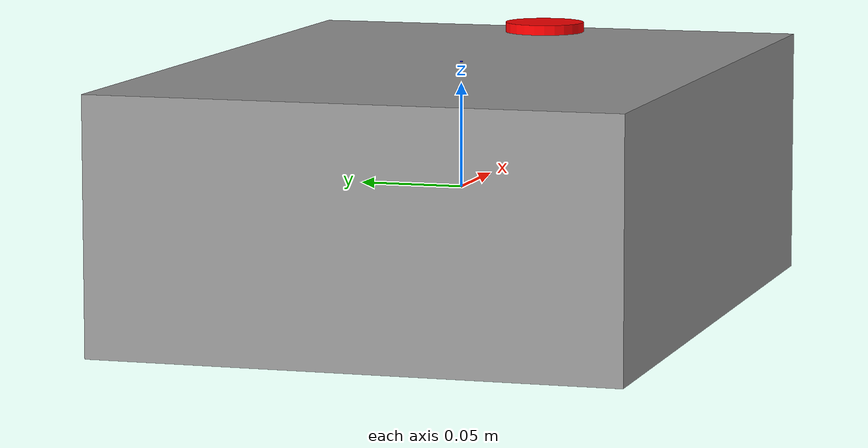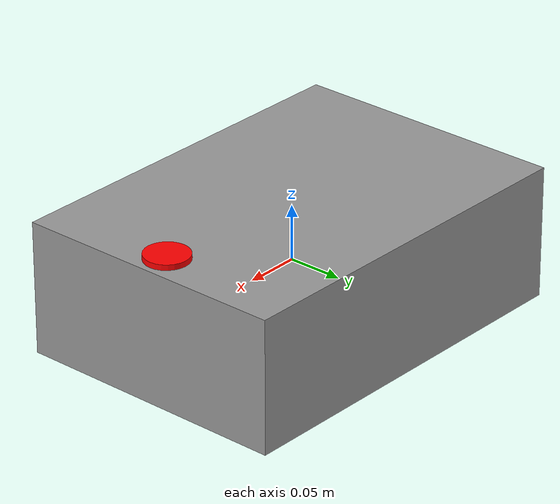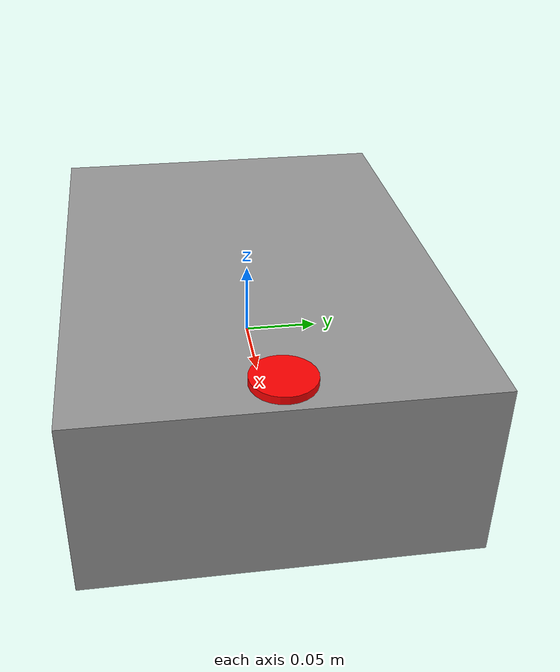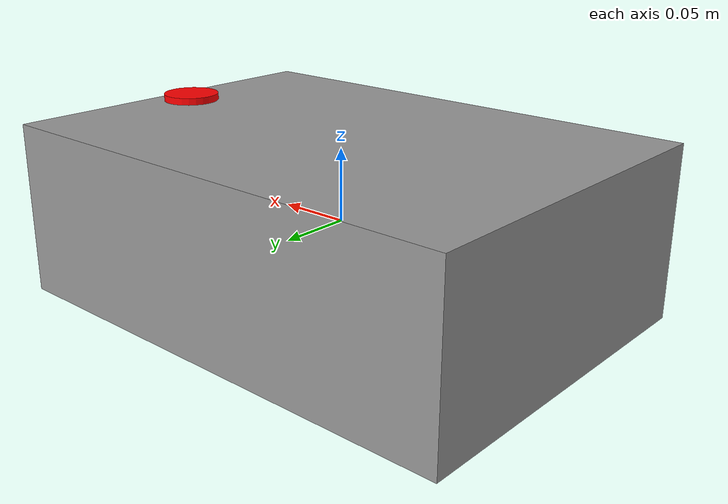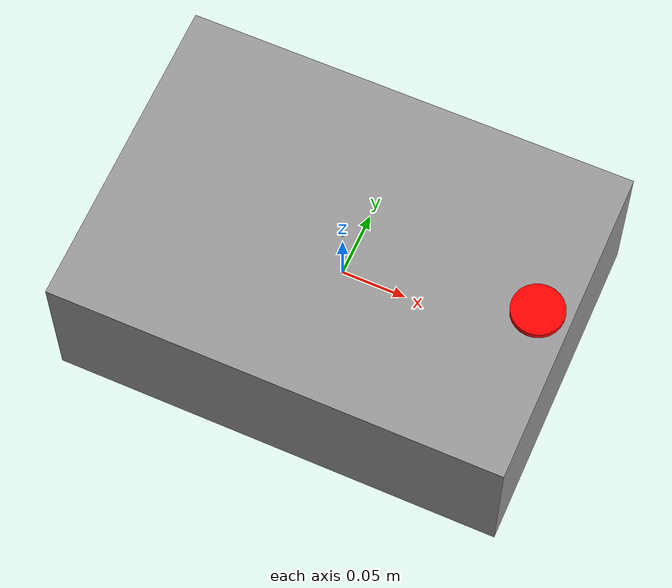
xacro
<?xml version="1.0"?>
<robot name="limo" xmlns:xacro="http://ros.org/wiki/xacro">

  <!-- Include macros -->
  <xacro:include filename="limo_macros.xacro"/>

  <!-- Properties -->
  <xacro:property name="base_length" value="0.35"/>
  <xacro:property name="base_width" value="0.25"/>
  <xacro:property name="base_height" value="0.12"/>
  <xacro:property name="base_mass" value="8.0"/>
  <xacro:property name="base_inertia_val" value="0.20"/>

  <!-- Materials -->
  <material name="base_gray">
    <color rgba="0.6 0.6 0.6 1.0"/>
  </material>

  <material name="laser_material">
    <color rgba="1.0 0.0 0.0 1.0"/>
  </material>

  <material name="imu_material">
    <color rgba="0.0 0.0 1.0 1.0"/>
  </material>

  <!-- Base Link -->
  <link name="base_link">
    <visual>
      <geometry>
        <box size="${base_length} ${base_width} ${base_height}"/>
      </geometry>
      <material name="base_gray"/>
    </visual>

    <collision>
      <geometry>
        <box size="${base_length} ${base_width} ${base_height}"/>
      </geometry>
    </collision>

    <inertial>
      <origin xyz="0 0 0" rpy="0 0 0"/>
      <mass value="${base_mass}"/>
      <inertia
        ixx="${base_inertia_val}"
        ixy="0.0"
        ixz="0.0"
        iyy="${base_inertia_val}"
        iyz="0.0"
        izz="${base_inertia_val}"/>
    </inertial>
  </link>

  <!-- LIDAR -->
  <xacro:limo_laser parent_prefix="base_link" frame_prefix="laser">
    <origin xyz="0.15 0 ${base_height/2}" rpy="0 0 0"/>
  </xacro:limo_laser>

  <!-- IMU -->
  <xacro:limo_imu parent_prefix="base_link" frame_prefix="imu">
    <origin xyz="0 0 ${base_height/2}" rpy="0 0 0"/>
  </xacro:limo_imu>

</robot>

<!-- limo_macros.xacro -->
<robot name="limo_macros" xmlns:xacro="http://ros.org/wiki/xacro">

  <!-- ================= WHEELS ================= -->
  <xacro:macro name="limo_wheel" params="parent_prefix wheel_prefix reflect *joint_pose">
    <link name="${wheel_prefix}_wheel_link">
      <inertial>
        <origin xyz="0 0 0"/>
        <mass value="0.5"/>
        <inertia ixx="0.01055" ixy="0" ixz="0"
                 iyy="0.00075" iyz="0"
                 izz="0.01055"/>
      </inertial>

      <visual>
        <origin xyz="0 0 0" rpy="0 0 0"/>
        <geometry>
          <mesh filename="package://limo_description/meshes/limo_wheel.dae"/>
        </geometry>
      </visual>

      <collision>
        <origin xyz="0 ${wheel_length/2} 0" rpy="1.57 0 0"/>
        <geometry>
          <cylinder length="${wheel_length}" radius="${wheel_radius}"/>
        </geometry>
      </collision>
    </link>

    <joint name="${wheel_prefix}_wheel" type="continuous">
      <parent link="${parent_prefix}"/>
      <child link="${wheel_prefix}_wheel_link"/>
      <xacro:insert_block name="joint_pose"/>
      <axis xyz="0 ${reflect} 0"/>
    </joint>
  </xacro:macro>

  <!-- ================= LASER ================= -->
  <xacro:macro name="limo_laser" params="parent_prefix frame_prefix *joint_pose">
    <link name="${frame_prefix}_link">
      <inertial>
        <mass value="0.1"/>
        <origin xyz="0 0 0" rpy="0 0 0"/>
        <inertia ixx="1e-6" ixy="0" ixz="0"
                 iyy="1e-6" iyz="0"
                 izz="1e-6"/>
      </inertial>

      <visual>
        <geometry>
          <cylinder radius="0.02" length="0.01"/>
        </geometry>
        <material name="laser_material"/>
      </visual>

      <collision>
        <geometry>
          <cylinder radius="0.032" length="0.016"/>
        </geometry>
      </collision>
    </link>

    <joint name="${frame_prefix}_joint" type="fixed">
      <xacro:insert_block name="joint_pose"/>
      <parent link="${parent_prefix}"/>
      <child link="${frame_prefix}_link"/>
    </joint>
  </xacro:macro>

  <!-- ================= DEPTH CAMERA ================= -->
  <xacro:macro name="limo_depth_camera" params="parent_prefix frame_prefix *joint_pose">
    <link name="${frame_prefix}_link">
      <inertial>
        <mass value="0.1"/>
        <origin xyz="0 0 0" rpy="0 0 0"/>
        <inertia ixx="1e-6" ixy="0" ixz="0"
                 iyy="1e-6" iyz="0"
                 izz="1e-6"/>
      </inertial>

      <visual>
        <geometry>
          <box size="0.02 0.06 0.015"/>
        </geometry>
        <material name="depth_camera_material"/>
      </visual>

      <collision>
        <geometry>
          <box size="0.02 0.06 0.015"/>
        </geometry>
      </collision>
    </link>

    <joint name="${frame_prefix}_joint" type="fixed">
      <xacro:insert_block name="joint_pose"/>
      <parent link="${parent_prefix}"/>
      <child link="${frame_prefix}_link"/>
    </joint>
  </xacro:macro>

  <!-- ================= IMU ================= -->
  <xacro:macro name="limo_imu" params="parent_prefix frame_prefix *joint_pose">
    <link name="${frame_prefix}_link">
      <inertial>
        <mass value="0.01"/>
        <origin xyz="0 0 0" rpy="0 0 0"/>
        <inertia ixx="1e-7" ixy="0" ixz="0"
                 iyy="1e-7" iyz="0"
                 izz="1e-7"/>
      </inertial>

      <visual>
        <geometry>
          <box size="0.001 0.001 0.001"/>
        </geometry>
        <material name="imu_material"/>
      </visual>

      <collision>
        <geometry>
          <box size="0.001 0.001 0.001"/>
        </geometry>
      </collision>
    </link>

    <joint name="${frame_prefix}_joint" type="fixed">
      <xacro:insert_block name="joint_pose"/>
      <parent link="${parent_prefix}"/>
      <child link="${frame_prefix}_link"/>
    </joint>
  </xacro:macro>

</robot>
